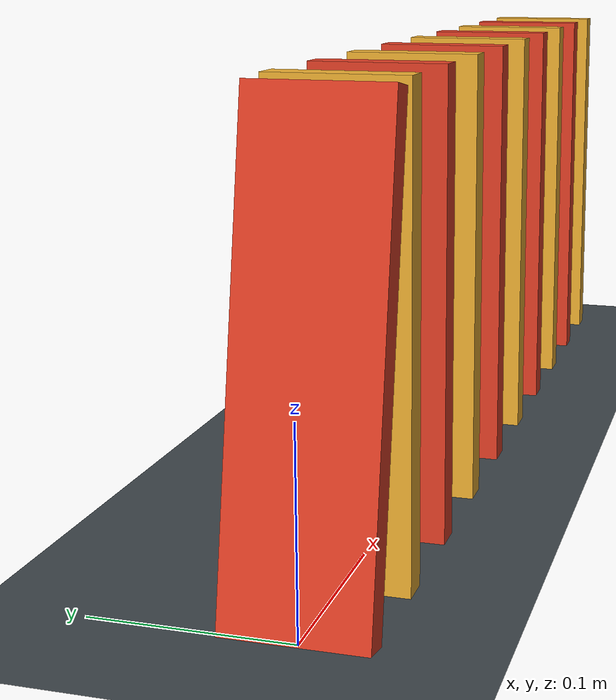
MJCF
<mujoco model="ten_domino_chain">
  <compiler angle="degree"/>
  <option timestep="0.002" gravity="0 0 -9.81" integrator="implicitfast" solver="Newton" iterations="100" cone="elliptic"/>
  <visual>
    <headlight ambient="0.35 0.35 0.35" diffuse="0.65 0.65 0.65" specular="0.2 0.2 0.2"/>
  </visual>
  <worldbody>
    <light name="overhead_light" pos="0.3 -0.5 2" dir="0 0 -1" directional="true"/>
    <camera name="overview" pos="0.3 -1.3 0.8" xyaxes="1 0 0 0 0.447214 0.894427"/>
    <geom name="floor" type="plane" pos="0 0 0" size="2 1 0.1" friction="0.7 0.005 0.0001" condim="3" solref="0.008 1" solimp="0.95 0.99 0.001" rgba="0.25 0.28 0.3 1"/>
    <body name="domino1" pos="0.020959319 0 0.119566116" quat="0.996194698 0 0.087155743 0">
      <freejoint name="domino1_free"/>
      <geom name="domino1_box" type="box" size="0.008 0.035 0.12" mass="0.1" friction="0.7 0.005 0.0001" condim="3" solref="0.008 1" solimp="0.95 0.99 0.001" rgba="0.9 0.25 0.15 1"/>
    </body>
    <body name="domino2" pos="0.065 0 0.12">
      <freejoint name="domino2_free"/>
      <geom name="domino2_box" type="box" size="0.008 0.035 0.12" mass="0.1" friction="0.7 0.005 0.0001" condim="3" solref="0.008 1" solimp="0.95 0.99 0.001" rgba="0.95 0.7 0.2 1"/>
    </body>
    <body name="domino3" pos="0.130 0 0.12">
      <freejoint name="domino3_free"/>
      <geom name="domino3_box" type="box" size="0.008 0.035 0.12" mass="0.1" friction="0.7 0.005 0.0001" condim="3" solref="0.008 1" solimp="0.95 0.99 0.001" rgba="0.9 0.25 0.15 1"/>
    </body>
    <body name="domino4" pos="0.195 0 0.12">
      <freejoint name="domino4_free"/>
      <geom name="domino4_box" type="box" size="0.008 0.035 0.12" mass="0.1" friction="0.7 0.005 0.0001" condim="3" solref="0.008 1" solimp="0.95 0.99 0.001" rgba="0.95 0.7 0.2 1"/>
    </body>
    <body name="domino5" pos="0.260 0 0.12">
      <freejoint name="domino5_free"/>
      <geom name="domino5_box" type="box" size="0.008 0.035 0.12" mass="0.1" friction="0.7 0.005 0.0001" condim="3" solref="0.008 1" solimp="0.95 0.99 0.001" rgba="0.9 0.25 0.15 1"/>
    </body>
    <body name="domino6" pos="0.325 0 0.12">
      <freejoint name="domino6_free"/>
      <geom name="domino6_box" type="box" size="0.008 0.035 0.12" mass="0.1" friction="0.7 0.005 0.0001" condim="3" solref="0.008 1" solimp="0.95 0.99 0.001" rgba="0.95 0.7 0.2 1"/>
    </body>
    <body name="domino7" pos="0.390 0 0.12">
      <freejoint name="domino7_free"/>
      <geom name="domino7_box" type="box" size="0.008 0.035 0.12" mass="0.1" friction="0.7 0.005 0.0001" condim="3" solref="0.008 1" solimp="0.95 0.99 0.001" rgba="0.9 0.25 0.15 1"/>
    </body>
    <body name="domino8" pos="0.455 0 0.12">
      <freejoint name="domino8_free"/>
      <geom name="domino8_box" type="box" size="0.008 0.035 0.12" mass="0.1" friction="0.7 0.005 0.0001" condim="3" solref="0.008 1" solimp="0.95 0.99 0.001" rgba="0.95 0.7 0.2 1"/>
    </body>
    <body name="domino9" pos="0.520 0 0.12">
      <freejoint name="domino9_free"/>
      <geom name="domino9_box" type="box" size="0.008 0.035 0.12" mass="0.1" friction="0.7 0.005 0.0001" condim="3" solref="0.008 1" solimp="0.95 0.99 0.001" rgba="0.9 0.25 0.15 1"/>
    </body>
    <body name="domino10" pos="0.585 0 0.12">
      <freejoint name="domino10_free"/>
      <geom name="domino10_box" type="box" size="0.008 0.035 0.12" mass="0.1" friction="0.7 0.005 0.0001" condim="3" solref="0.008 1" solimp="0.95 0.99 0.001" rgba="0.95 0.7 0.2 1"/>
    </body>
  </worldbody>
</mujoco>
